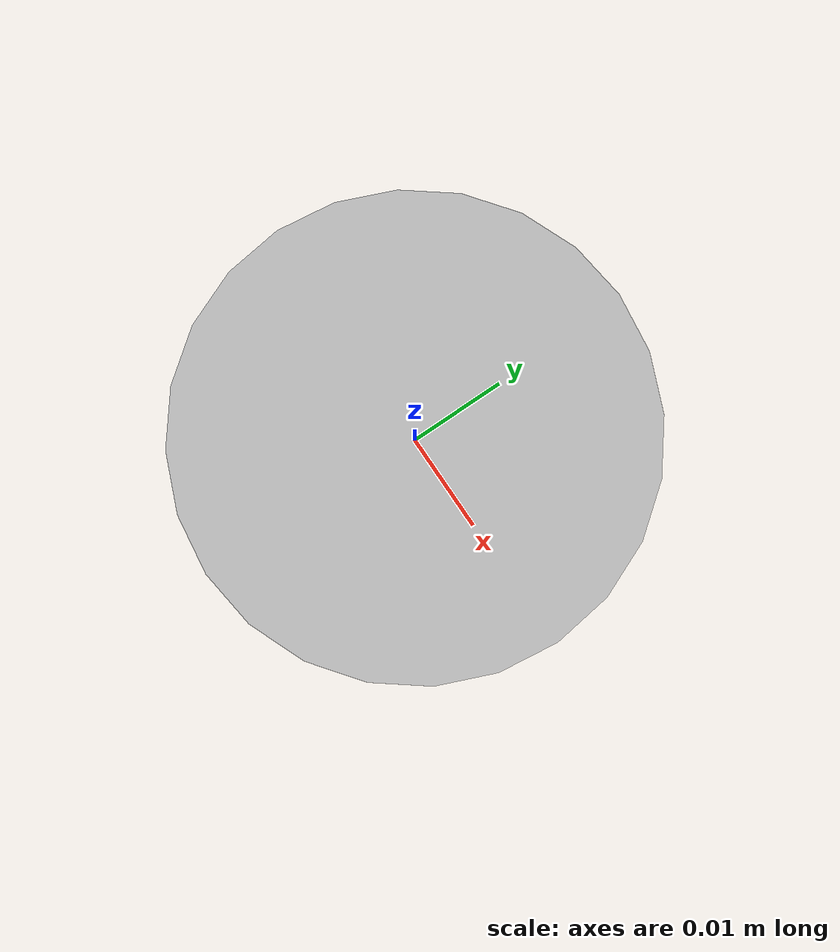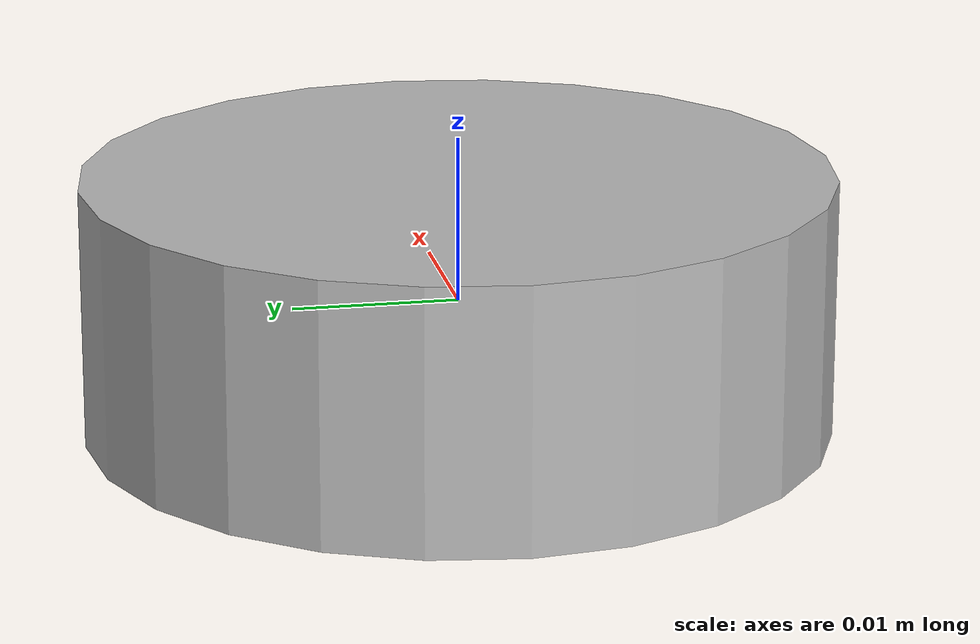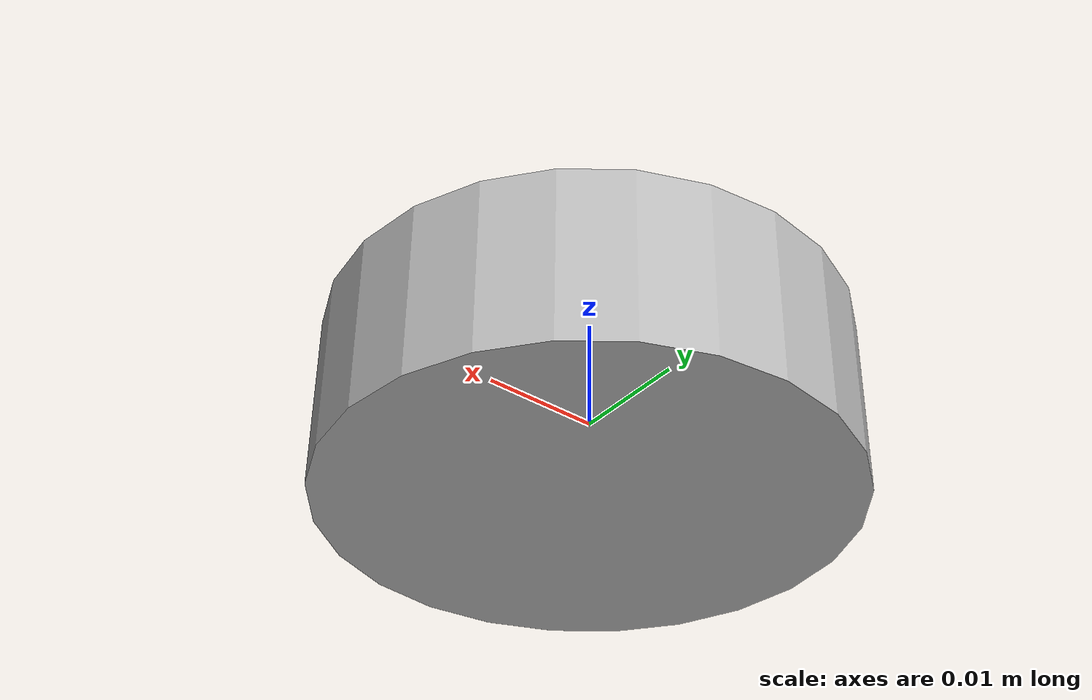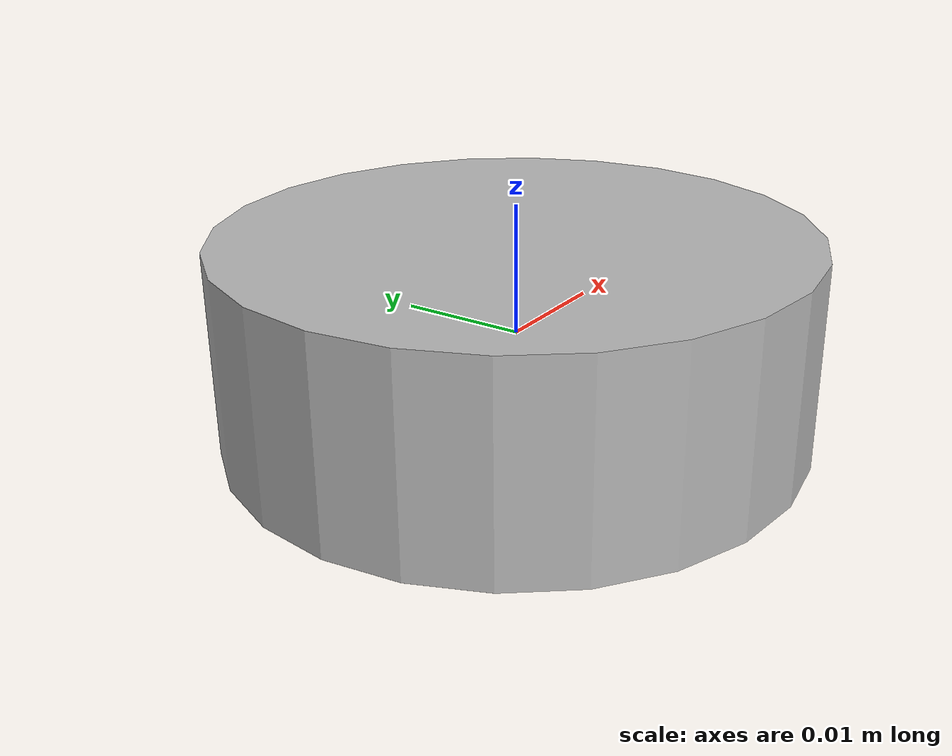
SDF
<?xml version="1.0"?>
<sdf version="1.6">
  <model name="ati_mini45">
    <pose>0 0 0 0 0 0</pose>
    <static>false</static>
    <link name="body">
      <inertial>
        <mass>0.0917</mass>
        <inertia>
          <ixx>1.348937558333e-05</ixx>
          <iyy>1.348937558333e-05</iyy>
          <izz>2.321156250000e-05</izz>
          <ixy>0.0</ixy>
          <ixz>0.0</ixz>
          <iyz>0.0</iyz>
        </inertia>
      </inertial>
      <collision name="collision">
        <geometry>
          <cylinder>
            <radius>0.0225</radius>
            <length>0.0157</length>
          </cylinder>
        </geometry>
      </collision>
      <visual name="visual">
        <geometry>
          <cylinder>
            <radius>0.0225</radius>
            <length>0.0157</length>
          </cylinder>
        </geometry>
      </visual>
    </link>
    <joint name="ft_joint" type="fixed">
      <parent>world</parent>
      <child>body</child>
      <sensor name="ft_sensor" type="force_torque">
        <always_on>true</always_on>
        <update_rate>1000</update_rate>
        <visualize>false</visualize>
        <force_torque>
          <frame>child</frame>
          <measure_direction>child_to_parent</measure_direction>
        </force_torque>
      </sensor>
    </joint>
  </model>
</sdf>
